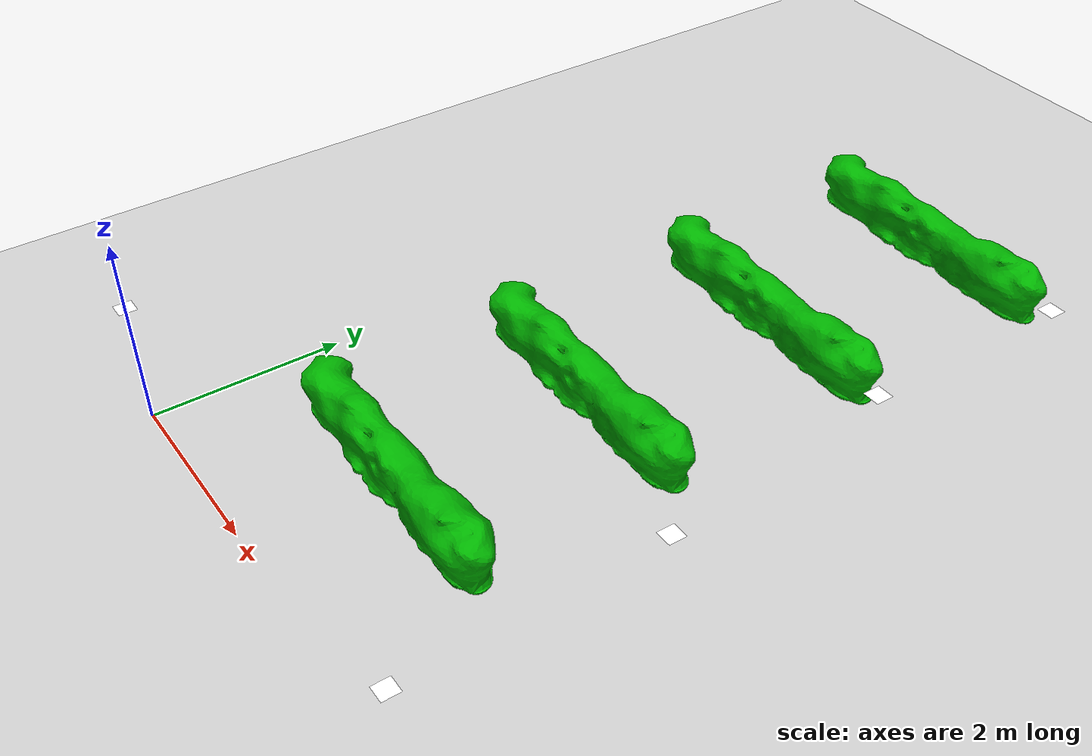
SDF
<sdf version="1.6">
 <world name="default">
  <model name="earth_plane">
   <static>1</static>
   <link name="link">
    <collision name="collision">
     <geometry><plane><normal>0 0 1</normal><size>100 100</size></plane></geometry>
     <surface><friction><ode><mu>100</mu><mu2>50</mu2></ode></friction></surface>
    </collision>
    <visual name="visual">
     <cast_shadows>0</cast_shadows>
     <geometry><plane><normal>0 0 1</normal><size>100 100</size></plane></geometry>
     <material>
      <script>
       <uri>model://earth_plane/materials/scripts</uri>
       <uri>model://earth_plane/materials/textures</uri>
       <name>vrc/earth</name>
      </script>
     </material>
    </visual>
    <velocity_decay><linear>0</linear><angular>0</angular></velocity_decay>
   </link>
  </model>
  <model name="plot_1">
   <link name="link_6">
    <inertial>
     <mass>1</mass>
     <inertia>
      <ixx>0.166667</ixx>
      <ixy>0</ixy>
      <ixz>0</ixz>
      <iyy>0.166667</iyy>
      <iyz>0</iyz>
      <izz>0.166667</izz>
     </inertia>
    </inertial>
    <visual name="visual">
     <pose>0 0 0.35211 0 -0 0</pose>
     <geometry><mesh><uri>model://plot/meshes/plot.stl</uri><scale>1 1 1</scale></mesh></geometry>
     <material>
      <lighting>1</lighting>
      <script><uri>file://media/materials/scripts/gazebo.material</uri><name>Gazebo/Grey</name></script>
      <shader type="pixel"><normal_map>__default__</normal_map></shader>
      <ambient>0.2 0.9 0.1 1</ambient>
      <diffuse>0 0.7 0 1</diffuse>
      <specular>0.01 0.01 0.01 1</specular>
      <emissive>0 0 0 1</emissive>
     </material>
    </visual>
    <collision name="collision">
     <pose>0 0 0.306336 0 -0 0</pose>
     <geometry><mesh><uri>model://plot/meshes/plot.stl</uri><scale>1 1 1</scale></mesh></geometry>
     <surface>
      <friction>
       <ode><mu>1</mu><mu2>1</mu2><fdir1>0 0 0</fdir1><slip1>0</slip1><slip2>0</slip2></ode>
       <torsional>
        <coefficient>1</coefficient>
        <patch_radius>0</patch_radius>
        <surface_radius>0</surface_radius>
        <use_patch_radius>1</use_patch_radius>
        <ode><slip>0</slip></ode>
       </torsional>
      </friction>
      <bounce><restitution_coefficient>0</restitution_coefficient><threshold>1e+06</threshold></bounce>
      <contact>
       <collide_without_contact>0</collide_without_contact>
       <collide_without_contact_bitmask>1</collide_without_contact_bitmask>
       <collide_bitmask>1</collide_bitmask>
       <ode>
        <soft_cfm>0</soft_cfm>
        <soft_erp>0.2</soft_erp>
        <kp>1e+13</kp>
        <kd>1</kd>
        <max_vel>0.01</max_vel>
        <min_depth>0</min_depth>
       </ode>
       <bullet>
        <split_impulse>1</split_impulse>
        <split_impulse_penetration_threshold>-0.01</split_impulse_penetration_threshold>
        <soft_cfm>0</soft_cfm>
        <soft_erp>0.2</soft_erp>
        <kp>1e+13</kp>
        <kd>1</kd>
       </bullet>
      </contact>
     </surface>
    </collision>
   </link>
   <static>1</static>
   <pose>2.29564 3.59203 0 0 -0 0</pose>
  </model>
  <model name="plot_2">
   <link name="link_6">
    <inertial>
     <mass>1</mass>
     <inertia>
      <ixx>0.166667</ixx>
      <ixy>0</ixy>
      <ixz>0</ixz>
      <iyy>0.166667</iyy>
      <iyz>0</iyz>
      <izz>0.166667</izz>
     </inertia>
    </inertial>
    <visual name="visual">
     <pose>0 0 0.35211 0 -0 0</pose>
     <geometry><mesh><uri>model://plot/meshes/plot.stl</uri><scale>1 1 1</scale></mesh></geometry>
     <material>
      <lighting>1</lighting>
      <script><uri>file://media/materials/scripts/gazebo.material</uri><name>Gazebo/Grey</name></script>
      <shader type="pixel"><normal_map>__default__</normal_map></shader>
      <ambient>0.2 0.9 0.1 1</ambient>
      <diffuse>0 0.7 0 1</diffuse>
      <specular>0.01 0.01 0.01 1</specular>
      <emissive>0 0 0 1</emissive>
     </material>
    </visual>
    <collision name="collision">
     <pose>0 0 0.306336 0 -0 0</pose>
     <geometry><mesh><uri>model://plot/meshes/plot.stl</uri><scale>1 1 1</scale></mesh></geometry>
     <surface>
      <friction>
       <ode><mu>1</mu><mu2>1</mu2><fdir1>0 0 0</fdir1><slip1>0</slip1><slip2>0</slip2></ode>
       <torsional>
        <coefficient>1</coefficient>
        <patch_radius>0</patch_radius>
        <surface_radius>0</surface_radius>
        <use_patch_radius>1</use_patch_radius>
        <ode><slip>0</slip></ode>
       </torsional>
      </friction>
      <bounce><restitution_coefficient>0</restitution_coefficient><threshold>1e+06</threshold></bounce>
      <contact>
       <collide_without_contact>0</collide_without_contact>
       <collide_without_contact_bitmask>1</collide_without_contact_bitmask>
       <collide_bitmask>1</collide_bitmask>
       <ode>
        <soft_cfm>0</soft_cfm>
        <soft_erp>0.2</soft_erp>
        <kp>1e+13</kp>
        <kd>1</kd>
        <max_vel>0.01</max_vel>
        <min_depth>0</min_depth>
       </ode>
       <bullet>
        <split_impulse>1</split_impulse>
        <split_impulse_penetration_threshold>-0.01</split_impulse_penetration_threshold>
        <soft_cfm>0</soft_cfm>
        <soft_erp>0.2</soft_erp>
        <kp>1e+13</kp>
        <kd>1</kd>
       </bullet>
      </contact>
     </surface>
    </collision>
   </link>
   <static>1</static>
   <pose>2.34546 5.85532 0 0 -0 0</pose>
  </model>
  <model name="plot_4">
   <link name="link_6">
    <inertial>
     <mass>1</mass>
     <inertia>
      <ixx>0.166667</ixx>
      <ixy>0</ixy>
      <ixz>0</ixz>
      <iyy>0.166667</iyy>
      <iyz>0</iyz>
      <izz>0.166667</izz>
     </inertia>
    </inertial>
    <visual name="visual">
     <pose>0 0 0.35211 0 -0 0</pose>
     <geometry><mesh><uri>model://plot/meshes/plot.stl</uri><scale>1 1 1</scale></mesh></geometry>
     <material>
      <lighting>1</lighting>
      <script><uri>file://media/materials/scripts/gazebo.material</uri><name>Gazebo/Grey</name></script>
      <shader type="pixel"><normal_map>__default__</normal_map></shader>
      <ambient>0.2 0.9 0.1 1</ambient>
      <diffuse>0 0.7 0 1</diffuse>
      <specular>0.01 0.01 0.01 1</specular>
      <emissive>0 0 0 1</emissive>
     </material>
    </visual>
    <collision name="collision">
     <pose>0 0 0.306336 0 -0 0</pose>
     <geometry><mesh><uri>model://plot/meshes/plot.stl</uri><scale>1 1 1</scale></mesh></geometry>
     <surface>
      <friction>
       <ode><mu>1</mu><mu2>1</mu2><fdir1>0 0 0</fdir1><slip1>0</slip1><slip2>0</slip2></ode>
       <torsional>
        <coefficient>1</coefficient>
        <patch_radius>0</patch_radius>
        <surface_radius>0</surface_radius>
        <use_patch_radius>1</use_patch_radius>
        <ode><slip>0</slip></ode>
       </torsional>
      </friction>
      <bounce><restitution_coefficient>0</restitution_coefficient><threshold>1e+06</threshold></bounce>
      <contact>
       <collide_without_contact>0</collide_without_contact>
       <collide_without_contact_bitmask>1</collide_without_contact_bitmask>
       <collide_bitmask>1</collide_bitmask>
       <ode>
        <soft_cfm>0</soft_cfm>
        <soft_erp>0.2</soft_erp>
        <kp>1e+13</kp>
        <kd>1</kd>
        <max_vel>0.01</max_vel>
        <min_depth>0</min_depth>
       </ode>
       <bullet>
        <split_impulse>1</split_impulse>
        <split_impulse_penetration_threshold>-0.01</split_impulse_penetration_threshold>
        <soft_cfm>0</soft_cfm>
        <soft_erp>0.2</soft_erp>
        <kp>1e+13</kp>
        <kd>1</kd>
       </bullet>
      </contact>
     </surface>
    </collision>
   </link>
   <static>1</static>
   <pose>2.36416 8.16919 0 0 -0 0</pose>
  </model>
  <model name="plot_9">
   <link name="link_6">
    <inertial>
     <mass>1</mass>
     <inertia>
      <ixx>0.166667</ixx>
      <ixy>0</ixy>
      <ixz>0</ixz>
      <iyy>0.166667</iyy>
      <iyz>0</iyz>
      <izz>0.166667</izz>
     </inertia>
    </inertial>
    <visual name="visual">
     <pose>0 0 0.35211 0 -0 0</pose>
     <geometry><mesh><uri>model://plot/meshes/plot.stl</uri><scale>1 1 1</scale></mesh></geometry>
     <material>
      <lighting>1</lighting>
      <script><uri>file://media/materials/scripts/gazebo.material</uri><name>Gazebo/Grey</name></script>
      <shader type="pixel"><normal_map>__default__</normal_map></shader>
      <ambient>0.2 0.9 0.1 1</ambient>
      <diffuse>0 0.7 0 1</diffuse>
      <specular>0.01 0.01 0.01 1</specular>
      <emissive>0 0 0 1</emissive>
     </material>
    </visual>
    <collision name="collision">
     <pose>0 0 0.306336 0 -0 0</pose>
     <geometry><mesh><uri>model://plot/meshes/plot.stl</uri><scale>1 1 1</scale></mesh></geometry>
     <surface>
      <friction>
       <ode><mu>1</mu><mu2>1</mu2><fdir1>0 0 0</fdir1><slip1>0</slip1><slip2>0</slip2></ode>
       <torsional>
        <coefficient>1</coefficient>
        <patch_radius>0</patch_radius>
        <surface_radius>0</surface_radius>
        <use_patch_radius>1</use_patch_radius>
        <ode><slip>0</slip></ode>
       </torsional>
      </friction>
      <bounce><restitution_coefficient>0</restitution_coefficient><threshold>1e+06</threshold></bounce>
      <contact>
       <collide_without_contact>0</collide_without_contact>
       <collide_without_contact_bitmask>1</collide_without_contact_bitmask>
       <collide_bitmask>1</collide_bitmask>
       <ode>
        <soft_cfm>0</soft_cfm>
        <soft_erp>0.2</soft_erp>
        <kp>1e+13</kp>
        <kd>1</kd>
        <max_vel>0.01</max_vel>
        <min_depth>0</min_depth>
       </ode>
       <bullet>
        <split_impulse>1</split_impulse>
        <split_impulse_penetration_threshold>-0.01</split_impulse_penetration_threshold>
        <soft_cfm>0</soft_cfm>
        <soft_erp>0.2</soft_erp>
        <kp>1e+13</kp>
        <kd>1</kd>
       </bullet>
      </contact>
     </surface>
    </collision>
   </link>
   <static>1</static>
   <pose>2.31254 1.46117 0 0 -0 0</pose>
  </model>
  <model name="aruco_visual_marker_2">
   <link name="marker">
    <visual name="visual">
     <geometry><box><size>0.1778 0.1778 1e-05</size></box></geometry>
     <material>
      <script>
       <uri>model://aruco_visual_marker_2/materials/scripts</uri>
       <uri>model://aruco_visual_marker_2/materials/textures</uri>
       <name>ArucoVisualMarker2/Marker</name>
      </script>
      <ambient>1 1 1 1</ambient>
      <diffuse>1 1 1 1</diffuse>
      <specular>0 0 0 1</specular>
      <emissive>1 1 1 0</emissive>
      <shader type="vertex"><normal_map>__default__</normal_map></shader>
     </material>
    </visual>
    <collision name="collision"><geometry><box><size>0.1778 0.1778 1e-05</size></box></geometry></collision>
   </link>
   <joint name="marker_JOINT_marker_pad" type="revolute">
    <parent>marker</parent>
    <child>marker_pad</child>
    <axis>
     <xyz>0 0 1</xyz>
     <limit><upper>0</upper><lower>0</lower></limit>
     <use_parent_model_frame>0</use_parent_model_frame>
     <dynamics><spring_reference>0</spring_reference><spring_stiffness>0</spring_stiffness></dynamics>
    </axis>
   </joint>
   <static>1</static>
   <pose>5 4.76772 1.37616 0 -0 0</pose>
  </model>
  <model name="aruco_visual_marker_1">
   <link name="marker">
    <visual name="visual">
     <geometry><box><size>0.1778 0.1778 1e-05</size></box></geometry>
     <material>
      <script>
       <uri>model://aruco_visual_marker_1/materials/scripts</uri>
       <uri>model://aruco_visual_marker_1/materials/textures</uri>
       <name>ArucoVisualMarker1/Marker</name>
      </script>
      <ambient>1 1 1 1</ambient>
      <diffuse>1 1 1 1</diffuse>
      <specular>0 0 0 1</specular>
      <emissive>1 1 1 0</emissive>
      <shader type="vertex"><normal_map>__default__</normal_map></shader>
     </material>
    </visual>
    <collision name="collision"><geometry><box><size>0.1778 0.1778 1e-05</size></box></geometry></collision>
   </link>
   <joint name="marker_JOINT_marker_pad" type="revolute">
    <parent>marker</parent>
    <child>marker_pad</child>
    <axis>
     <xyz>0 0 1</xyz>
     <limit><upper>0</upper><lower>0</lower></limit>
     <use_parent_model_frame>0</use_parent_model_frame>
     <dynamics><spring_reference>0</spring_reference><spring_stiffness>0</spring_stiffness></dynamics>
    </axis>
   </joint>
   <static>1</static>
   <pose>5 0 0.903874 0 -0 0</pose>
  </model>
  <model name="aruco_visual_marker_4">
   <link name="marker">
    <visual name="visual">
     <geometry><box><size>0.1778 0.1778 1e-05</size></box></geometry>
     <material>
      <script>
       <uri>model://aruco_visual_marker_4/materials/scripts</uri>
       <uri>model://aruco_visual_marker_4/materials/textures</uri>
       <name>ArucoVisualMarker4/Marker</name>
      </script>
      <ambient>1 1 1 1</ambient>
      <diffuse>1 1 1 1</diffuse>
      <specular>0 0 0 1</specular>
      <emissive>1 1 1 0</emissive>
      <shader type="vertex"><normal_map>__default__</normal_map></shader>
     </material>
    </visual>
    <collision name="collision"><geometry><box><size>0.1778 0.1778 1e-05</size></box></geometry></collision>
   </link>
   <joint name="marker_JOINT_marker_pad" type="revolute">
    <parent>marker</parent>
    <child>marker_pad</child>
    <axis>
     <xyz>0 0 1</xyz>
     <limit><upper>0</upper><lower>0</lower></limit>
     <use_parent_model_frame>0</use_parent_model_frame>
     <dynamics><spring_reference>0</spring_reference><spring_stiffness>0</spring_stiffness></dynamics>
    </axis>
   </joint>
   <static>1</static>
   <pose>5 2.58131 0.979095 0 -0 0</pose>
  </model>
  <model name="aruco_visual_marker_5">
   <link name="marker">
    <visual name="visual">
     <geometry><box><size>0.1778 0.1778 1e-05</size></box></geometry>
     <material>
      <script>
       <uri>model://aruco_visual_marker_5/materials/scripts</uri>
       <uri>model://aruco_visual_marker_5/materials/textures</uri>
       <name>ArucoVisualMarker5/Marker</name>
      </script>
      <ambient>1 1 1 1</ambient>
      <diffuse>1 1 1 1</diffuse>
      <specular>0 0 0 1</specular>
      <emissive>1 1 1 0</emissive>
      <shader type="vertex"><normal_map>__default__</normal_map></shader>
     </material>
    </visual>
    <collision name="collision"><geometry><box><size>0.1778 0.1778 1e-05</size></box></geometry></collision>
   </link>
   <joint name="marker_JOINT_marker_pad" type="revolute">
    <parent>marker</parent>
    <child>marker_pad</child>
    <axis>
     <xyz>0 0 1</xyz>
     <limit><upper>0</upper><lower>0</lower></limit>
     <use_parent_model_frame>0</use_parent_model_frame>
     <dynamics><spring_reference>0</spring_reference><spring_stiffness>0</spring_stiffness></dynamics>
    </axis>
   </joint>
   <static>1</static>
   <pose>5.01374 6.9123 1.3659 0 -0 0</pose>
  </model>
  <model name="aruco_visual_marker_7">
   <link name="marker">
    <visual name="visual">
     <geometry><box><size>0.1778 0.1778 1e-05</size></box></geometry>
     <material>
      <script>
       <uri>model://aruco_visual_marker_7/materials/scripts</uri>
       <uri>model://aruco_visual_marker_7/materials/textures</uri>
       <name>ArucoVisualMarker7/Marker</name>
      </script>
      <ambient>1 1 1 1</ambient>
      <diffuse>1 1 1 1</diffuse>
      <specular>0 0 0 1</specular>
      <emissive>1 1 1 0</emissive>
      <shader type="vertex"><normal_map>__default__</normal_map></shader>
     </material>
    </visual>
    <collision name="collision"><geometry><box><size>0.1778 0.1778 1e-05</size></box></geometry></collision>
   </link>
   <joint name="marker_JOINT_marker_pad" type="revolute">
    <parent>marker</parent>
    <child>marker_pad</child>
    <axis>
     <xyz>0 0 1</xyz>
     <limit><upper>0</upper><lower>0</lower></limit>
     <use_parent_model_frame>0</use_parent_model_frame>
     <dynamics><spring_reference>0</spring_reference><spring_stiffness>0</spring_stiffness></dynamics>
    </axis>
   </joint>
   <static>1</static>
   <pose>0 -0 1.31507 0 -0 0</pose>
  </model>
 </world>
</sdf>
